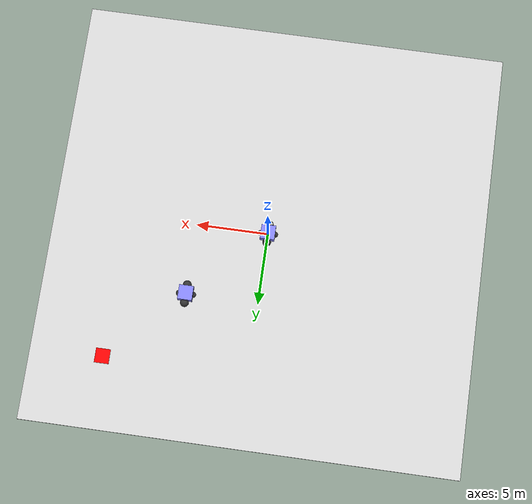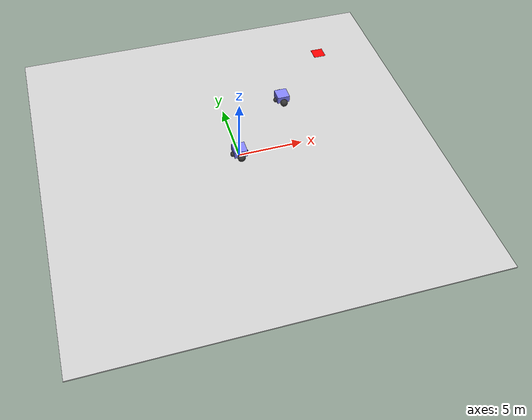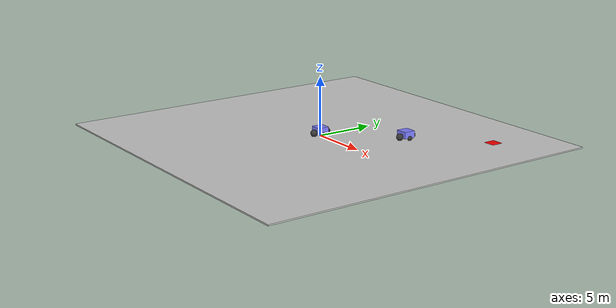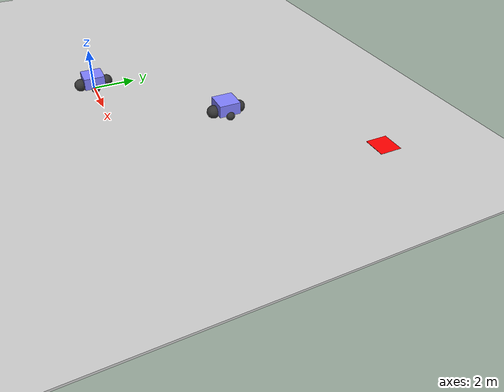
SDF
<?xml version="1.0" ?>

<sdf version="1.6">
  <world name="testwrld">
    <physics name="1ms" type="ignored">
      <max_step_size>0.001</max_step_size>
      <real_time_factor>1.0</real_time_factor>
    </physics>
    <plugin
      filename="libignition-gazebo-physics-system.so"
      name="ignition::gazebo::systems::Physics">
    </plugin>
    <plugin
      filename="libignition-gazebo-sensors-system.so"
      name="ignition::gazebo::systems::Sensors">
      <render_engine>ogre2</render_engine>
    </plugin>
    <plugin
      filename="libignition-gazebo-scene-broadcaster-system.so"
      name="ignition::gazebo::systems::SceneBroadcaster">
    </plugin>

    <gui fullscreen="0">

      <!-- 3D scene -->
      <plugin filename="MinimalScene" name="3D View">
        <ignition-gui>
          <title>3D View</title>
          <property type="bool" key="showTitleBar">false</property>
          <property type="string" key="state">docked</property>
        </ignition-gui>

        <engine>ogre2</engine>
        <scene>scene</scene>
        <ambient_light>0.4 0.4 0.4</ambient_light>
        <background_color>0.8 0.8 0.8</background_color>
        <camera_pose>-6 0 6 0 0.5 0</camera_pose>
      </plugin>

      <!-- Plugins that add functionality to the scene -->
      <plugin filename="EntityContextMenuPlugin" name="Entity context menu">
        <ignition-gui>
          <property key="state" type="string">floating</property>
          <property key="width" type="double">5</property>
          <property key="height" type="double">5</property>
          <property key="showTitleBar" type="bool">false</property>
        </ignition-gui>
      </plugin>
      <plugin filename="GzSceneManager" name="Scene Manager">
        <ignition-gui>
          <property key="resizable" type="bool">false</property>
          <property key="width" type="double">5</property>
          <property key="height" type="double">5</property>
          <property key="state" type="string">floating</property>
          <property key="showTitleBar" type="bool">false</property>
        </ignition-gui>
      </plugin>
      <plugin filename="InteractiveViewControl" name="Interactive view control">
        <ignition-gui>
          <property key="resizable" type="bool">false</property>
          <property key="width" type="double">5</property>
          <property key="height" type="double">5</property>
          <property key="state" type="string">floating</property>
          <property key="showTitleBar" type="bool">false</property>
        </ignition-gui>
      </plugin>
      <plugin filename="CameraTracking" name="Camera Tracking">
        <ignition-gui>
          <property key="resizable" type="bool">false</property>
          <property key="width" type="double">5</property>
          <property key="height" type="double">5</property>
          <property key="state" type="string">floating</property>
          <property key="showTitleBar" type="bool">false</property>
        </ignition-gui>
      </plugin>
      <!-- World control -->
      <plugin filename="WorldControl" name="World control">
        <ignition-gui>
          <title>World control</title>
          <property type="bool" key="showTitleBar">false</property>
          <property type="bool" key="resizable">false</property>
          <property type="double" key="height">72</property>
          <property type="double" key="width">121</property>
          <property type="double" key="z">1</property>

          <property type="string" key="state">floating</property>
          <anchors target="3D View">
            <line own="left" target="left"/>
            <line own="bottom" target="bottom"/>
          </anchors>
        </ignition-gui>

        <play_pause>true</play_pause>
        <step>true</step>
        <start_paused>true</start_paused>
        <use_event>true</use_event>

      </plugin>

      <!-- World statistics -->
      <plugin filename="WorldStats" name="World stats">
        <ignition-gui>
          <title>World stats</title>
          <property type="bool" key="showTitleBar">false</property>
          <property type="bool" key="resizable">false</property>
          <property type="double" key="height">110</property>
          <property type="double" key="width">290</property>
          <property type="double" key="z">1</property>

          <property type="string" key="state">floating</property>
          <anchors target="3D View">
            <line own="right" target="right"/>
            <line own="bottom" target="bottom"/>
          </anchors>
        </ignition-gui>

        <sim_time>true</sim_time>
        <real_time>true</real_time>
        <real_time_factor>true</real_time_factor>
        <iterations>true</iterations>
      </plugin>

      <!-- Inspector -->
      <plugin filename="ComponentInspector" name="Component inspector">
        <ignition-gui>
          <property type="string" key="state">docked</property>
        </ignition-gui>
      </plugin>

      <!-- Entity tree -->
      <plugin filename="EntityTree" name="Entity tree">
        <ignition-gui>
          <property type="string" key="state">docked</property>
        </ignition-gui>
      </plugin>
    </gui>

    <light type="directional" name="sun">
      <cast_shadows>true</cast_shadows>
      <pose>0 0 10 0 0 0</pose>
      <diffuse>0.8 0.8 0.8 1</diffuse>
      <specular>0.2 0.2 0.2 1</specular>
      <attenuation>
        <range>1000</range>
        <constant>0.9</constant>
        <linear>0.01</linear>
        <quadratic>0.001</quadratic>
      </attenuation>
      <direction>-0.5 0.1 -0.9</direction>
    </light>

    <model name="ground_plane">
      <static>true</static>
      <link name="link">
        <collision name="collision">
          <geometry>
            <box>
              <size>30 30 0.1</size>
            </box>
          </geometry>
        </collision>
        <visual name="visual">
          <geometry>
            <box>
              <size>30 30 0.1</size>
            </box>
          </geometry>
          <material>
            <ambient>0.8 0.8 0.8 1</ambient>
            <diffuse>0.8 0.8 0.8 1</diffuse>
            <specular>0.8 0.8 0.8 1</specular>
          </material>
        </visual>
      </link>
    </model>

    <model name="box">
      <static>true</static>
      <pose>10 10 -0.44 0 0 0</pose>
      <link name="box_link">
        <inertial>
          <inertia>
            <ixx>1</ixx>
            <ixy>0</ixy>
            <ixz>0</ixz>
            <iyy>1</iyy>
            <iyz>0</iyz>
            <izz>1</izz>
          </inertia>
          <mass>1.0</mass>
        </inertial>
        <collision name="box_collision">
          <geometry>
            <box>
              <size>1 1 1</size>
            </box>
          </geometry>
        </collision>

        <visual name="box_visual">
          <geometry>
            <box>
              <size>1 1 1</size>
            </box>
          </geometry>
          <material>
            <ambient>1 0 0 1</ambient>
            <diffuse>1 0 0 1</diffuse>
            <specular>1 0 0 1</specular>
          </material>
        </visual>
      </link>
    </model>

    <model name='vehicle_blue1'>
      <pose>0 0 0.325 0 0 0.0</pose>
      <link name='chassis'>
        <pose>0 0 0.175 0 -0 0</pose>
        <inertial>
          <mass>0.3</mass>
          <inertia>
            <ixx>0.1</ixx>
            <ixy>0</ixy>
            <ixz>0</ixz>
            <iyy>0.1</iyy>
            <iyz>0</iyz>
            <izz>0.1</izz>
          </inertia>
        </inertial>
        <visual name='visual'>
          <geometry>
            <box>
              <size>1 1 0.568726</size>
            </box>
          </geometry>
          <material>
            <ambient>0.5 0.5 1.0 1</ambient>
            <diffuse>0.5 0.5 1.0 1</diffuse>
            <specular>0.0 0.0 1.0 1</specular>
          </material>
        </visual>
        <collision name='collision'>
          <geometry>
            <box>
              <size>1 1 0.568726</size>
            </box>
          </geometry>
        </collision>
      </link>

      <link name='left_wheel'>
        <pose>0 0.625029 -0.025 -1.5707 0 0</pose>
        <inertial>
          <mass>0.2</mass>
          <inertia>
            <ixx>0.145833</ixx>
            <ixy>0</ixy>
            <ixz>0</ixz>
            <iyy>0.145833</iyy>
            <iyz>0</iyz>
            <izz>0.125</izz>
          </inertia>
        </inertial>
        <visual name='visual'>
          <geometry>
            <sphere>
              <radius>0.3</radius>
            </sphere>
          </geometry>
          <material>
            <ambient>0.2 0.2 0.2 1</ambient>
            <diffuse>0.2 0.2 0.2 1</diffuse>
            <specular>0.2 0.2 0.2 1</specular>
          </material>
        </visual>
        <collision name='collision'>
          <geometry>
            <sphere>
              <radius>0.3</radius>
            </sphere>
          </geometry>
        </collision>
      </link>

      <link name='right_wheel'>
        <pose>0 -0.625029 -0.025 -1.5707 0 0</pose>
        <inertial>
          <mass>0.2</mass>
          <inertia>
            <ixx>0.145833</ixx>
            <ixy>0</ixy>
            <ixz>0</ixz>
            <iyy>0.145833</iyy>
            <iyz>0</iyz>
            <izz>0.125</izz>
          </inertia>
        </inertial>
        <visual name='visual'>
          <geometry>
            <sphere>
              <radius>0.3</radius>
            </sphere>
          </geometry>
          <material>
            <ambient>0.2 0.2 0.2 1</ambient>
            <diffuse>0.2 0.2 0.2 1</diffuse>
            <specular>0.2 0.2 0.2 1</specular>
          </material>
        </visual>
        <collision name='collision'>
          <geometry>
            <sphere>
              <radius>0.3</radius>
            </sphere>
          </geometry>
        </collision>
      </link>

      <link name='caster'>
        <pose>-0.5 -0 -0.125 0 -0 0</pose>
        <inertial>
          <mass>0.1</mass>
          <inertia>
            <ixx>0.1</ixx>
            <ixy>0</ixy>
            <ixz>0</ixz>
            <iyy>0.1</iyy>
            <iyz>0</iyz>
            <izz>0.1</izz>
          </inertia>
        </inertial>
        <visual name='visual'>
          <geometry>
            <sphere>
              <radius>0.2</radius>
            </sphere>
          </geometry>
          <material>
            <ambient>0.2 0.2 0.2 1</ambient>
            <diffuse>0.2 0.2 0.2 1</diffuse>
            <specular>0.2 0.2 0.2 1</specular>
          </material>
        </visual>
        <collision name='collision'>
          <geometry>
            <sphere>
              <radius>0.2</radius>
            </sphere>
          </geometry>
        </collision>
      </link>

      <link name='caster2'>
        <pose>0.5 -0 -0.125 0 -0 0</pose>
        <inertial>
          <mass>0.1</mass>
          <inertia>
            <ixx>0.1</ixx>
            <ixy>0</ixy>
            <ixz>0</ixz>
            <iyy>0.1</iyy>
            <iyz>0</iyz>
            <izz>0.1</izz>
          </inertia>
        </inertial>
        <visual name='visual'>
          <geometry>
            <sphere>
              <radius>0.2</radius>
            </sphere>
          </geometry>
          <material>
            <ambient>0.2 0.2 0.2 1</ambient>
            <diffuse>0.2 0.2 0.2 1</diffuse>
            <specular>0.2 0.2 0.2 1</specular>
          </material>
        </visual>
        <collision name='collision'>
          <geometry>
            <sphere>
              <radius>0.2</radius>
            </sphere>
          </geometry>
        </collision>
      </link>

      <joint name='left_wheel_joint' type='revolute'>
        <parent>chassis</parent>
        <child>left_wheel</child>
        <axis>
          <xyz>0 0 1</xyz>
          <limit>
            <lower>-1.79769e+308</lower>
            <upper>1.79769e+308</upper>
          </limit>
        </axis>
      </joint>

      <joint name='right_wheel_joint' type='revolute'>
        <parent>chassis</parent>
        <child>right_wheel</child>
        <axis>
          <xyz>0 0 1</xyz>
          <limit>
            <lower>-1.79769e+308</lower>
            <upper>1.79769e+308</upper>
          </limit>
        </axis>
      </joint>

      <joint name='caster_wheel' type='ball'>
        <parent>chassis</parent>
        <child>caster</child>
      </joint>

      <joint name='caster_wheel2' type='ball'>
        <parent>chassis</parent>
        <child>caster2</child>
      </joint>

      <plugin
        filename="libignition-gazebo-diff-drive-system.so"
        name="ignition::gazebo::systems::DiffDrive">
        <left_joint>left_wheel_joint</left_joint>
        <right_joint>right_wheel_joint</right_joint>
        <wheel_separation>1.25</wheel_separation>
        <wheel_radius>0.3</wheel_radius>
        <odom_publish_frequency>50</odom_publish_frequency>
      </plugin>

      <plugin filename="libignition-gazebo-pose-publisher-system.so"
        name="ignition::gazebo::systems::PosePublisher">
        <publish_link_pose>true</publish_link_pose>
        <publish_sensor_pose>true</publish_sensor_pose>
        <publish_collision_pose>true</publish_collision_pose>
        <publish_visual_pose>true</publish_visual_pose>
        <publish_nested_model_pose>true</publish_nested_model_pose>
        <use_pose_vector_msg>true</use_pose_vector_msg>
        <static_publisher>true</static_publisher>
        <static_update_frequency>50</static_update_frequency>
      </plugin>
    </model>

    <model name='vehicle_blue2'>
      <pose>5 5 0.325 0 0 0.0</pose>
      <link name='chassis'>
        <pose>0 0 0.175 0 -0 0</pose>
        <inertial>
          <mass>0.3</mass>
          <inertia>
            <ixx>0.1</ixx>
            <ixy>0</ixy>
            <ixz>0</ixz>
            <iyy>0.1</iyy>
            <iyz>0</iyz>
            <izz>0.1</izz>
          </inertia>
        </inertial>
        <visual name='visual'>
          <geometry>
            <box>
              <size>1 1 0.568726</size>
            </box>
          </geometry>
          <material>
            <ambient>0.5 0.5 1.0 1</ambient>
            <diffuse>0.5 0.5 1.0 1</diffuse>
            <specular>0.0 0.0 1.0 1</specular>
          </material>
        </visual>
        <collision name='collision'>
          <geometry>
            <box>
              <size>1 1 0.568726</size>
            </box>
          </geometry>
        </collision>
      </link>

      <link name='left_wheel'>
        <pose>0 0.625029 -0.025 -1.5707 0 0</pose>
        <inertial>
          <mass>0.2</mass>
          <inertia>
            <ixx>0.145833</ixx>
            <ixy>0</ixy>
            <ixz>0</ixz>
            <iyy>0.145833</iyy>
            <iyz>0</iyz>
            <izz>0.125</izz>
          </inertia>
        </inertial>
        <visual name='visual'>
          <geometry>
            <sphere>
              <radius>0.3</radius>
            </sphere>
          </geometry>
          <material>
            <ambient>0.2 0.2 0.2 1</ambient>
            <diffuse>0.2 0.2 0.2 1</diffuse>
            <specular>0.2 0.2 0.2 1</specular>
          </material>
        </visual>
        <collision name='collision'>
          <geometry>
            <sphere>
              <radius>0.3</radius>
            </sphere>
          </geometry>
        </collision>
      </link>

      <link name='right_wheel'>
        <pose>0 -0.625029 -0.025 -1.5707 0 0</pose>
        <inertial>
          <mass>0.2</mass>
          <inertia>
            <ixx>0.145833</ixx>
            <ixy>0</ixy>
            <ixz>0</ixz>
            <iyy>0.145833</iyy>
            <iyz>0</iyz>
            <izz>0.125</izz>
          </inertia>
        </inertial>
        <visual name='visual'>
          <geometry>
            <sphere>
              <radius>0.3</radius>
            </sphere>
          </geometry>
          <material>
            <ambient>0.2 0.2 0.2 1</ambient>
            <diffuse>0.2 0.2 0.2 1</diffuse>
            <specular>0.2 0.2 0.2 1</specular>
          </material>
        </visual>
        <collision name='collision'>
          <geometry>
            <sphere>
              <radius>0.3</radius>
            </sphere>
          </geometry>
        </collision>
      </link>

      <link name='caster'>
        <pose>-0.5 -0 -0.125 0 -0 0</pose>
        <inertial>
          <mass>0.1</mass>
          <inertia>
            <ixx>0.1</ixx>
            <ixy>0</ixy>
            <ixz>0</ixz>
            <iyy>0.1</iyy>
            <iyz>0</iyz>
            <izz>0.1</izz>
          </inertia>
        </inertial>
        <visual name='visual'>
          <geometry>
            <sphere>
              <radius>0.2</radius>
            </sphere>
          </geometry>
          <material>
            <ambient>0.2 0.2 0.2 1</ambient>
            <diffuse>0.2 0.2 0.2 1</diffuse>
            <specular>0.2 0.2 0.2 1</specular>
          </material>
        </visual>
        <collision name='collision'>
          <geometry>
            <sphere>
              <radius>0.2</radius>
            </sphere>
          </geometry>
        </collision>
      </link>

      <link name='caster2'>
        <pose>0.5 -0 -0.125 0 -0 0</pose>
        <inertial>
          <mass>0.1</mass>
          <inertia>
            <ixx>0.1</ixx>
            <ixy>0</ixy>
            <ixz>0</ixz>
            <iyy>0.1</iyy>
            <iyz>0</iyz>
            <izz>0.1</izz>
          </inertia>
        </inertial>
        <visual name='visual'>
          <geometry>
            <sphere>
              <radius>0.2</radius>
            </sphere>
          </geometry>
          <material>
            <ambient>0.2 0.2 0.2 1</ambient>
            <diffuse>0.2 0.2 0.2 1</diffuse>
            <specular>0.2 0.2 0.2 1</specular>
          </material>
        </visual>
        <collision name='collision'>
          <geometry>
            <sphere>
              <radius>0.2</radius>
            </sphere>
          </geometry>
        </collision>
      </link>

      <joint name='left_wheel_joint' type='revolute'>
        <parent>chassis</parent>
        <child>left_wheel</child>
        <axis>
          <xyz>0 0 1</xyz>
          <limit>
            <lower>-1.79769e+308</lower>
            <upper>1.79769e+308</upper>
          </limit>
        </axis>
      </joint>

      <joint name='right_wheel_joint' type='revolute'>
        <parent>chassis</parent>
        <child>right_wheel</child>
        <axis>
          <xyz>0 0 1</xyz>
          <limit>
            <lower>-1.79769e+308</lower>
            <upper>1.79769e+308</upper>
          </limit>
        </axis>
      </joint>

      <joint name='caster_wheel' type='ball'>
        <parent>chassis</parent>
        <child>caster</child>
      </joint>

      <joint name='caster_wheel2' type='ball'>
        <parent>chassis</parent>
        <child>caster2</child>
      </joint>

      <plugin
        filename="libignition-gazebo-diff-drive-system.so"
        name="ignition::gazebo::systems::DiffDrive">
        <left_joint>left_wheel_joint</left_joint>
        <right_joint>right_wheel_joint</right_joint>
        <wheel_separation>1.25</wheel_separation>
        <wheel_radius>0.3</wheel_radius>
        <odom_publish_frequency>50</odom_publish_frequency>
      </plugin>

      <plugin filename="libignition-gazebo-pose-publisher-system.so"
        name="ignition::gazebo::systems::PosePublisher">
        <publish_link_pose>true</publish_link_pose>
        <publish_sensor_pose>true</publish_sensor_pose>
        <publish_collision_pose>true</publish_collision_pose>
        <publish_visual_pose>true</publish_visual_pose>
        <publish_nested_model_pose>true</publish_nested_model_pose>
        <use_pose_vector_msg>true</use_pose_vector_msg>
        <static_publisher>true</static_publisher>
        <static_update_frequency>50</static_update_frequency>
      </plugin>
    </model>
  </world>
</sdf>
